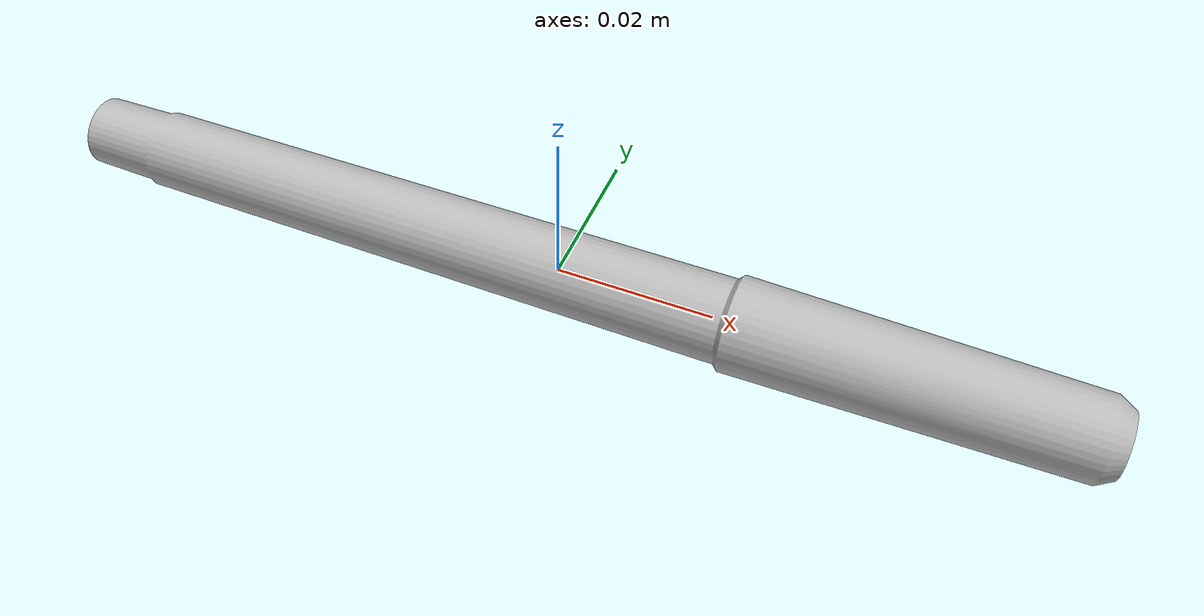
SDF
<?xml version="1.0" ?>
<sdf version="1.6">
  <model name="YCB_small_marker">
    <static>false</static>
    <link name="link">
      <inertial>
        <pose>0.08 0.0 0 0 0 0</pose>
        <mass>0.5</mass>
        <inertia>
          <ixx>0.00001</ixx>
          <iyy>0.0</iyy>
          <izz>0.0</izz>
          <ixy>0.0</ixy>
          <ixz>0.0</ixz>
          <iyz>0.0</iyz>
        </inertia>
      </inertial>
      <visual name="visual">
        <geometry>
          <mesh>
            <uri>model://YCB_small_marker/meshes/model.stl</uri>
          </mesh>
        </geometry>
        <material>
          <script>
            <uri>file://media/materials/scripts/gazebo.material</uri>
            <name>Gazebo/Pedestrian</name>
          </script>
        </material>
      </visual>
      <collision name="collision">
        <geometry>
          <mesh>
            <uri>model://YCB_small_marker/meshes/model.stl</uri>
          </mesh>
        </geometry>
      </collision>
    </link>
  </model>
</sdf>
